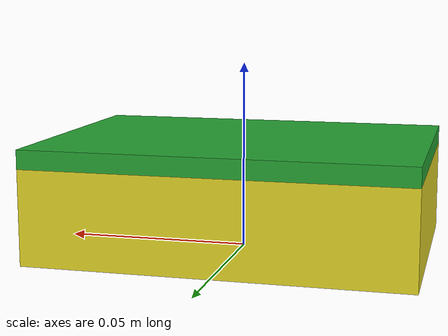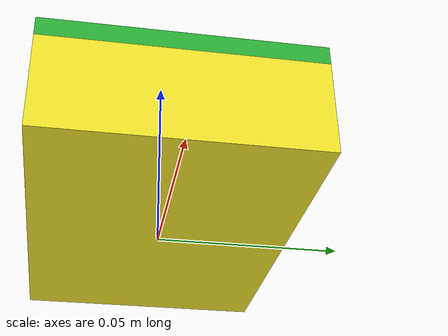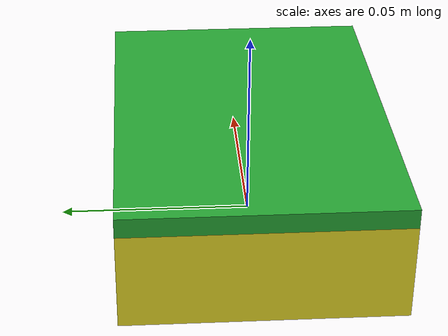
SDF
<?xml version="1.0" ?>
<sdf version="1.6">
  <model name="esponja_lavaplatos">
    <static>false</static>
    <link name="base_link">

      <inertial>
        <pose>0 0 0.015 0 0 0</pose> <mass>0.02</mass>
        <inertia>
          <ixx>0.00000831</ixx> <ixy>0.0</ixy> <ixz>0.0</ixz>
          <iyy>0.00001816</iyy> <iyz>0.0</iyz>
          <izz>0.00002481</izz>
        </inertia>
      </inertial>

      <velocity_decay>
        <linear>0.1</linear>
        <angular>0.1</angular>
      </velocity_decay>

      <collision name="collision_esponja">
        <pose>0 0 0.015 0 0 0</pose>
        <geometry>
          <box>
            <size>0.10 0.07 0.03</size> </box>
        </geometry>
        <surface>
          <friction>
            <ode>
              <mu>1.5</mu> <mu2>1.5</mu2>
            </ode>
          </friction>
          <contact>
            <ode>
              <kp>50000.0</kp> <kd>10.0</kd>
            </ode>
          </contact>
        </surface>
      </collision>

      <visual name="visual_amarillo">
        <pose>0 0 0.0125 0 0 0</pose>
        <geometry>
          <box>
            <size>0.10 0.07 0.025</size>
          </box>
        </geometry>
        <material>
          <script>
            <uri>file://media/materials/scripts/gazebo.material</uri>
            <name>Gazebo/Yellow</name>
          </script>
        </material>
      </visual>

      <visual name="visual_verde">
        <pose>0 0 0.0275 0 0 0</pose>
        <geometry>
          <box>
            <size>0.10 0.07 0.005</size> </box>
        </geometry>
        <material>
          <script>
            <uri>file://media/materials/scripts/gazebo.material</uri>
            <name>Gazebo/Green</name>
          </script>
        </material>
      </visual>

    </link>
  </model>
</sdf>
